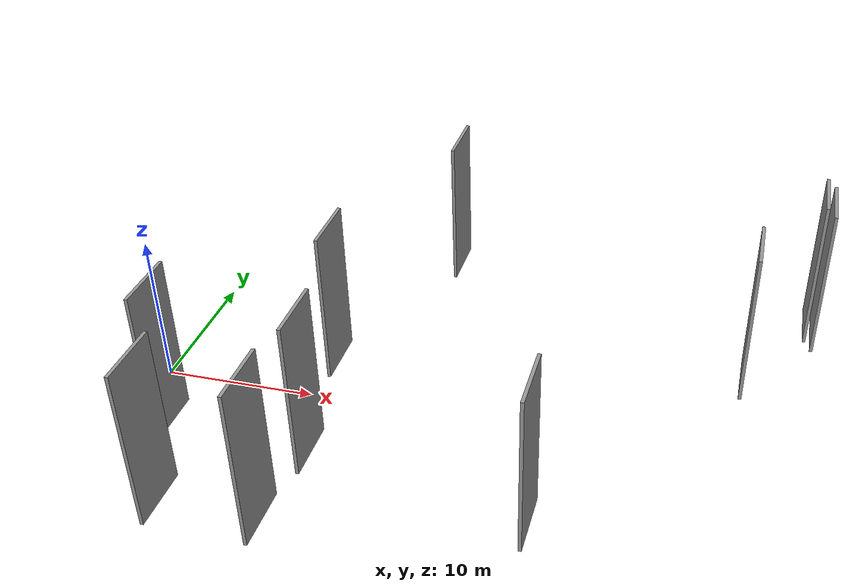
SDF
<sdf version="1.6">
 <world name="default">
  <scene>
   <sky><clouds><speed>12</speed></clouds></sky>
   <ambient>0.4 0.4 0.4 1</ambient>
   <background>0.7 0.7 0.7 1</background>
   <shadows>1</shadows>
  </scene>
  <gravity>0 0 -9.8066</gravity>
  <magnetic_field>6e-06 2.3e-05 -4.2e-05</magnetic_field>
  <physics default="0" name="default_physics" type="ode">
   <ode>
    <solver>
     <type>quick</type>
     <iters>10</iters>
     <sor>1.0</sor>
     <use_dynamic_moi_rescaling>0</use_dynamic_moi_rescaling>
    </solver>
    <constraints>
     <cfm>0</cfm>
     <erp>0.2</erp>
     <contact_max_correcting_vel>100</contact_max_correcting_vel>
     <contact_surface_layer>0.001</contact_surface_layer>
    </constraints>
   </ode>
   <max_step_size>0.004</max_step_size>
   <real_time_factor>1</real_time_factor>
   <real_time_update_rate>250</real_time_update_rate>
  </physics>
  <light name="sun" type="directional">
   <pose>0 0 10 0 0 0</pose>
   <diffuse>0.8 0.8 0.8 1</diffuse>
   <specular>0.2 0.2 0.2 1</specular>
   <attenuation>
    <range>1000</range>
    <constant>0.9</constant>
    <linear>0.01</linear>
    <quadratic>0.001</quadratic>
   </attenuation>
   <direction>-0.5 0.1 -0.9</direction>
  </light>
  <model name="grey_wall_1">
   <static>1</static>
   <pose>16.4673 14.1847 2.5 0.000000 0.000000 1.570796</pose>
   <link name="link">
    <pose>0 0 5.00 0 0 0</pose>
    <collision name="collision"><geometry><box><size>4.00 0.2 10.00</size></box></geometry></collision>
    <visual name="visual">
     <cast_shadows>0</cast_shadows>
     <geometry><box><size>4.00 0.2 10.00</size></box></geometry>
     <material>
      <script>
       <uri>model://grey_wall/materials/scripts</uri>
       <uri>model://grey_wall/materials/textures</uri>
       <name>vrc/grey_wall</name>
      </script>
     </material>
    </visual>
   </link>
  </model>
  <model name="grey_wall_2">
   <static>1</static>
   <pose>37.1056 4.9496 2.5 0.000000 0.000000 1.570796</pose>
   <link name="link">
    <pose>0 0 5.00 0 0 0</pose>
    <collision name="collision"><geometry><box><size>4.00 0.2 10.00</size></box></geometry></collision>
    <visual name="visual">
     <cast_shadows>0</cast_shadows>
     <geometry><box><size>4.00 0.2 10.00</size></box></geometry>
     <material>
      <script>
       <uri>model://grey_wall/materials/scripts</uri>
       <uri>model://grey_wall/materials/textures</uri>
       <name>vrc/grey_wall</name>
      </script>
     </material>
    </visual>
   </link>
  </model>
  <model name="grey_wall_3">
   <static>1</static>
   <pose>26.7411 -10.5427 2.5 0.000000 0.000000 1.570796</pose>
   <link name="link">
    <pose>0 0 5.00 0 0 0</pose>
    <collision name="collision"><geometry><box><size>4.00 0.2 10.00</size></box></geometry></collision>
    <visual name="visual">
     <cast_shadows>0</cast_shadows>
     <geometry><box><size>4.00 0.2 10.00</size></box></geometry>
     <material>
      <script>
       <uri>model://grey_wall/materials/scripts</uri>
       <uri>model://grey_wall/materials/textures</uri>
       <name>vrc/grey_wall</name>
      </script>
     </material>
    </visual>
   </link>
  </model>
  <model name="grey_wall_4">
   <static>1</static>
   <pose>13.2009 -7.7686 2.5 0.000000 0.000000 1.570796</pose>
   <link name="link">
    <pose>0 0 5.00 0 0 0</pose>
    <collision name="collision"><geometry><box><size>4.00 0.2 10.00</size></box></geometry></collision>
    <visual name="visual">
     <cast_shadows>0</cast_shadows>
     <geometry><box><size>4.00 0.2 10.00</size></box></geometry>
     <material>
      <script>
       <uri>model://grey_wall/materials/scripts</uri>
       <uri>model://grey_wall/materials/textures</uri>
       <name>vrc/grey_wall</name>
      </script>
     </material>
    </visual>
   </link>
  </model>
  <model name="grey_wall_5">
   <static>1</static>
   <pose>12.6165 -13.5625 2.5 0.000000 0.000000 1.570796</pose>
   <link name="link">
    <pose>0 0 5.00 0 0 0</pose>
    <collision name="collision"><geometry><box><size>4.00 0.2 10.00</size></box></geometry></collision>
    <visual name="visual">
     <cast_shadows>0</cast_shadows>
     <geometry><box><size>4.00 0.2 10.00</size></box></geometry>
     <material>
      <script>
       <uri>model://grey_wall/materials/scripts</uri>
       <uri>model://grey_wall/materials/textures</uri>
       <name>vrc/grey_wall</name>
      </script>
     </material>
    </visual>
   </link>
  </model>
  <model name="grey_wall_6">
   <static>1</static>
   <pose>41.2897 11.0461 2.5 0.000000 0.000000 1.570796</pose>
   <link name="link">
    <pose>0 0 5.00 0 0 0</pose>
    <collision name="collision"><geometry><box><size>4.00 0.2 10.00</size></box></geometry></collision>
    <visual name="visual">
     <cast_shadows>0</cast_shadows>
     <geometry><box><size>4.00 0.2 10.00</size></box></geometry>
     <material>
      <script>
       <uri>model://grey_wall/materials/scripts</uri>
       <uri>model://grey_wall/materials/textures</uri>
       <name>vrc/grey_wall</name>
      </script>
     </material>
    </visual>
   </link>
  </model>
  <model name="grey_wall_7">
   <static>1</static>
   <pose>40.8161 12.0201 2.5 0.000000 0.000000 1.570796</pose>
   <link name="link">
    <pose>0 0 5.00 0 0 0</pose>
    <collision name="collision"><geometry><box><size>4.00 0.2 10.00</size></box></geometry></collision>
    <visual name="visual">
     <cast_shadows>0</cast_shadows>
     <geometry><box><size>4.00 0.2 10.00</size></box></geometry>
     <material>
      <script>
       <uri>model://grey_wall/materials/scripts</uri>
       <uri>model://grey_wall/materials/textures</uri>
       <name>vrc/grey_wall</name>
      </script>
     </material>
    </visual>
   </link>
  </model>
  <model name="grey_wall_8">
   <static>1</static>
   <pose>6.5865 -13.4802 2.5 0.000000 0.000000 1.570796</pose>
   <link name="link">
    <pose>0 0 5.00 0 0 0</pose>
    <collision name="collision"><geometry><box><size>4.00 0.2 10.00</size></box></geometry></collision>
    <visual name="visual">
     <cast_shadows>0</cast_shadows>
     <geometry><box><size>4.00 0.2 10.00</size></box></geometry>
     <material>
      <script>
       <uri>model://grey_wall/materials/scripts</uri>
       <uri>model://grey_wall/materials/textures</uri>
       <name>vrc/grey_wall</name>
      </script>
     </material>
    </visual>
   </link>
  </model>
  <model name="grey_wall_9">
   <static>1</static>
   <pose>4.1254 -7.1035 2.5 0.000000 0.000000 1.570796</pose>
   <link name="link">
    <pose>0 0 5.00 0 0 0</pose>
    <collision name="collision"><geometry><box><size>4.00 0.2 10.00</size></box></geometry></collision>
    <visual name="visual">
     <cast_shadows>0</cast_shadows>
     <geometry><box><size>4.00 0.2 10.00</size></box></geometry>
     <material>
      <script>
       <uri>model://grey_wall/materials/scripts</uri>
       <uri>model://grey_wall/materials/textures</uri>
       <name>vrc/grey_wall</name>
      </script>
     </material>
    </visual>
   </link>
  </model>
  <model name="grey_wall_10">
   <static>1</static>
   <pose>11.8020 1.0959 2.5 0.000000 0.000000 1.570796</pose>
   <link name="link">
    <pose>0 0 5.00 0 0 0</pose>
    <collision name="collision"><geometry><box><size>4.00 0.2 10.00</size></box></geometry></collision>
    <visual name="visual">
     <cast_shadows>0</cast_shadows>
     <geometry><box><size>4.00 0.2 10.00</size></box></geometry>
     <material>
      <script>
       <uri>model://grey_wall/materials/scripts</uri>
       <uri>model://grey_wall/materials/textures</uri>
       <name>vrc/grey_wall</name>
      </script>
     </material>
    </visual>
   </link>
  </model>
 </world>
</sdf>
